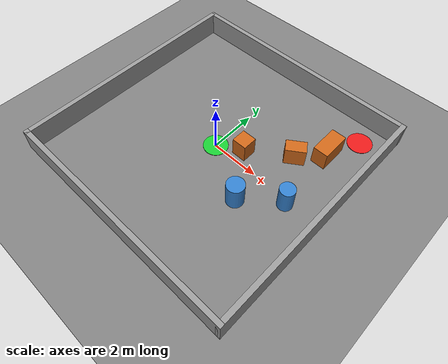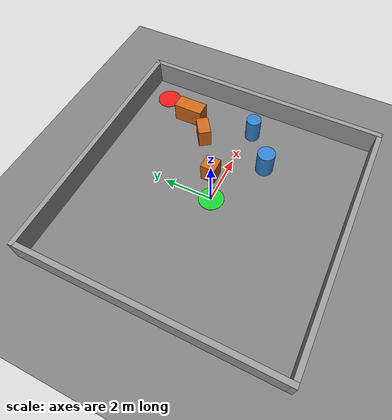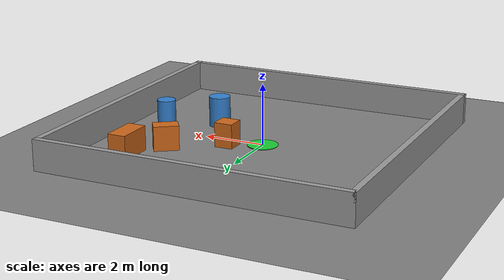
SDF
<?xml version="1.0" ?>
<sdf version="1.8">
  <world name="course">

    <physics name="4ms" type="ignored">
      <max_step_size>0.004</max_step_size>
      <real_time_factor>1.0</real_time_factor>
    </physics>

    <plugin filename="ignition-gazebo-physics-system"
            name="ignition::gazebo::systems::Physics"/>
    <plugin filename="ignition-gazebo-user-commands-system"
            name="ignition::gazebo::systems::UserCommands"/>
    <plugin filename="ignition-gazebo-scene-broadcaster-system"
            name="ignition::gazebo::systems::SceneBroadcaster"/>
    <plugin filename="ignition-gazebo-sensors-system"
            name="ignition::gazebo::systems::Sensors">
      <render_engine>ogre2</render_engine>
    </plugin>
    <plugin filename="ignition-gazebo-navsat-system"
            name="ignition::gazebo::systems::NavSat"/>

    <!-- Georeference used by the navsat (GPS) sensor -->
    <spherical_coordinates>
      <surface_model>EARTH_WGS84</surface_model>
      <world_frame_orientation>ENU</world_frame_orientation>
      <latitude_deg>37.4225</latitude_deg>
      <longitude_deg>-122.0840</longitude_deg>
      <elevation>10.0</elevation>
      <heading_deg>0</heading_deg>
    </spherical_coordinates>

    <scene>
      <ambient>0.6 0.6 0.6 1</ambient>
      <background>0.7 0.8 0.9 1</background>
      <shadows>true</shadows>
    </scene>

    <light type="directional" name="sun">
      <cast_shadows>true</cast_shadows>
      <pose>0 0 10 0 0 0</pose>
      <diffuse>0.9 0.9 0.9 1</diffuse>
      <specular>0.3 0.3 0.3 1</specular>
      <direction>-0.4 0.2 -0.9</direction>
    </light>

    <!-- ========================= Ground ========================= -->
    <model name="ground_plane">
      <static>true</static>
      <link name="link">
        <collision name="collision">
          <geometry><plane><normal>0 0 1</normal><size>30 30</size></plane></geometry>
          <surface>
            <friction><ode><mu>1.5</mu><mu2>1.5</mu2></ode></friction>
          </surface>
        </collision>
        <visual name="visual">
          <geometry><plane><normal>0 0 1</normal><size>30 30</size></plane></geometry>
          <material>
            <ambient>0.3 0.3 0.3 1</ambient>
            <diffuse>0.5 0.5 0.5 1</diffuse>
          </material>
        </visual>
      </link>
    </model>

    <!-- ========================= Boundary walls (10 x 10) ========================= -->
    <model name="wall_north">
      <static>true</static><pose>0 5 0.5 0 0 0</pose>
      <link name="link">
        <collision name="c"><geometry><box><size>10.2 0.2 1.0</size></box></geometry></collision>
        <visual name="v"><geometry><box><size>10.2 0.2 1.0</size></box></geometry>
          <material><ambient>0.6 0.6 0.6 1</ambient><diffuse>0.6 0.6 0.6 1</diffuse></material></visual>
      </link>
    </model>
    <model name="wall_south">
      <static>true</static><pose>0 -5 0.5 0 0 0</pose>
      <link name="link">
        <collision name="c"><geometry><box><size>10.2 0.2 1.0</size></box></geometry></collision>
        <visual name="v"><geometry><box><size>10.2 0.2 1.0</size></box></geometry>
          <material><ambient>0.6 0.6 0.6 1</ambient><diffuse>0.6 0.6 0.6 1</diffuse></material></visual>
      </link>
    </model>
    <model name="wall_east">
      <static>true</static><pose>5 0 0.5 0 0 1.5708</pose>
      <link name="link">
        <collision name="c"><geometry><box><size>10.2 0.2 1.0</size></box></geometry></collision>
        <visual name="v"><geometry><box><size>10.2 0.2 1.0</size></box></geometry>
          <material><ambient>0.6 0.6 0.6 1</ambient><diffuse>0.6 0.6 0.6 1</diffuse></material></visual>
      </link>
    </model>
    <model name="wall_west">
      <static>true</static><pose>-5 0 0.5 0 0 1.5708</pose>
      <link name="link">
        <collision name="c"><geometry><box><size>10.2 0.2 1.0</size></box></geometry></collision>
        <visual name="v"><geometry><box><size>10.2 0.2 1.0</size></box></geometry>
          <material><ambient>0.6 0.6 0.6 1</ambient><diffuse>0.6 0.6 0.6 1</diffuse></material></visual>
      </link>
    </model>

    <!-- ========================= Obstacles ========================= -->
    <model name="obstacle_box_1">
      <static>true</static><pose>1.0 0.5 0.4 0 0 0</pose>
      <link name="link">
        <collision name="c"><geometry><box><size>0.6 0.6 0.8</size></box></geometry></collision>
        <visual name="v"><geometry><box><size>0.6 0.6 0.8</size></box></geometry>
          <material><ambient>0.8 0.4 0.1 1</ambient><diffuse>0.8 0.4 0.1 1</diffuse></material></visual>
      </link>
    </model>
    <model name="obstacle_cyl_1">
      <static>true</static><pose>2.2 -1.3 0.5 0 0 0</pose>
      <link name="link">
        <collision name="c"><geometry><cylinder><radius>0.35</radius><length>1.0</length></cylinder></geometry></collision>
        <visual name="v"><geometry><cylinder><radius>0.35</radius><length>1.0</length></cylinder></geometry>
          <material><ambient>0.2 0.5 0.8 1</ambient><diffuse>0.2 0.5 0.8 1</diffuse></material></visual>
      </link>
    </model>
    <model name="obstacle_box_2">
      <static>true</static><pose>2.6 1.6 0.4 0 0 0.6</pose>
      <link name="link">
        <collision name="c"><geometry><box><size>0.8 0.5 0.8</size></box></geometry></collision>
        <visual name="v"><geometry><box><size>0.8 0.5 0.8</size></box></geometry>
          <material><ambient>0.8 0.4 0.1 1</ambient><diffuse>0.8 0.4 0.1 1</diffuse></material></visual>
      </link>
    </model>
    <model name="obstacle_cyl_2">
      <static>true</static><pose>3.6 -0.2 0.5 0 0 0</pose>
      <link name="link">
        <collision name="c"><geometry><cylinder><radius>0.3</radius><length>1.0</length></cylinder></geometry></collision>
        <visual name="v"><geometry><cylinder><radius>0.3</radius><length>1.0</length></cylinder></geometry>
          <material><ambient>0.2 0.5 0.8 1</ambient><diffuse>0.2 0.5 0.8 1</diffuse></material></visual>
      </link>
    </model>
    <model name="obstacle_box_3">
      <static>true</static><pose>3.4 2.6 0.4 0 0 0</pose>
      <link name="link">
        <collision name="c"><geometry><box><size>0.6 1.2 0.8</size></box></geometry></collision>
        <visual name="v"><geometry><box><size>0.6 1.2 0.8</size></box></geometry>
          <material><ambient>0.8 0.4 0.1 1</ambient><diffuse>0.8 0.4 0.1 1</diffuse></material></visual>
      </link>
    </model>

    <!-- ========================= Start / Goal pads ========================= -->
    <model name="start_zone">
      <static>true</static><pose>0 0 0.01 0 0 0</pose>
      <link name="link">
        <visual name="v"><geometry><cylinder><radius>0.5</radius><length>0.02</length></cylinder></geometry>
          <material><ambient>0.1 0.8 0.2 1</ambient><diffuse>0.1 0.8 0.2 1</diffuse></material></visual>
      </link>
    </model>
    <model name="goal_zone">
      <static>true</static><pose>4.0 4.0 0.01 0 0 0</pose>
      <link name="link">
        <visual name="v"><geometry><cylinder><radius>0.5</radius><length>0.02</length></cylinder></geometry>
          <material><ambient>0.9 0.1 0.1 1</ambient><diffuse>0.9 0.1 0.1 1</diffuse></material></visual>
      </link>
    </model>

  </world>
</sdf>
